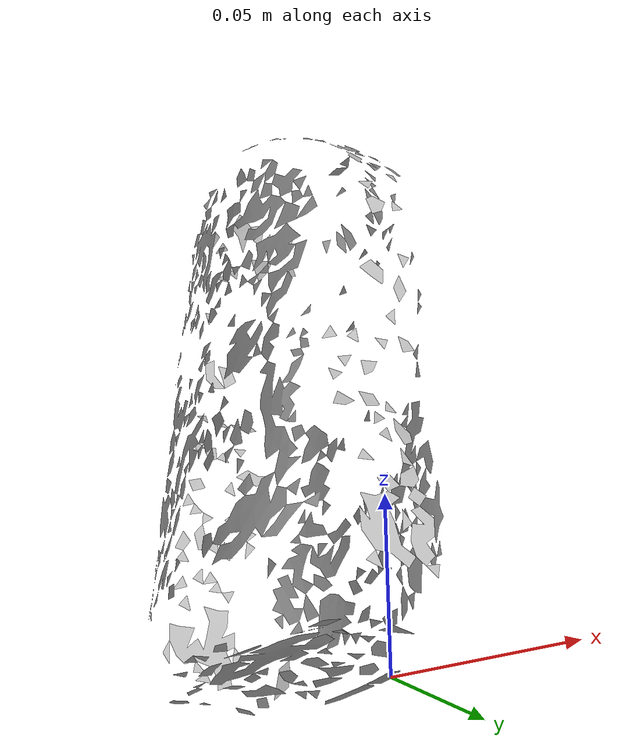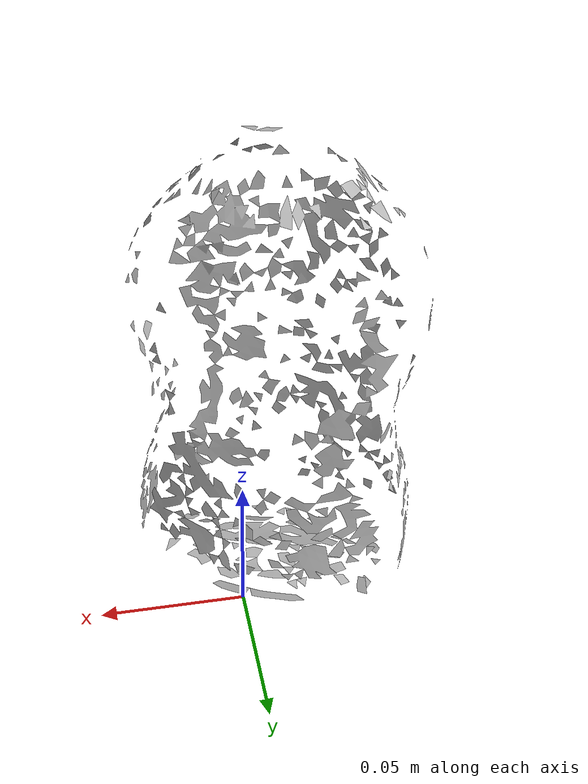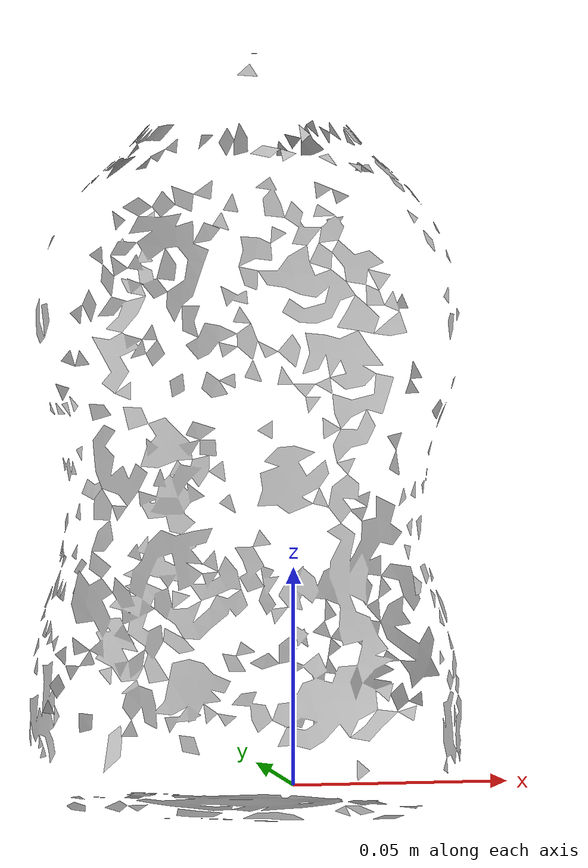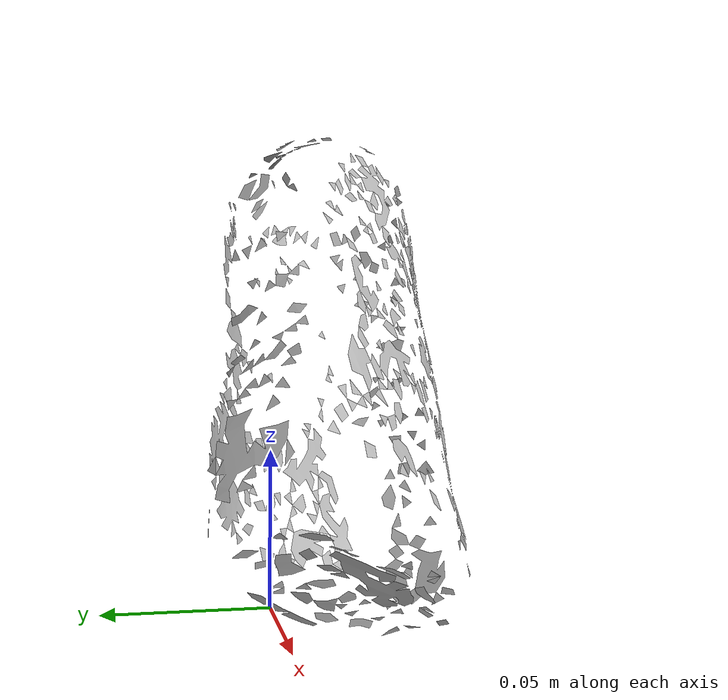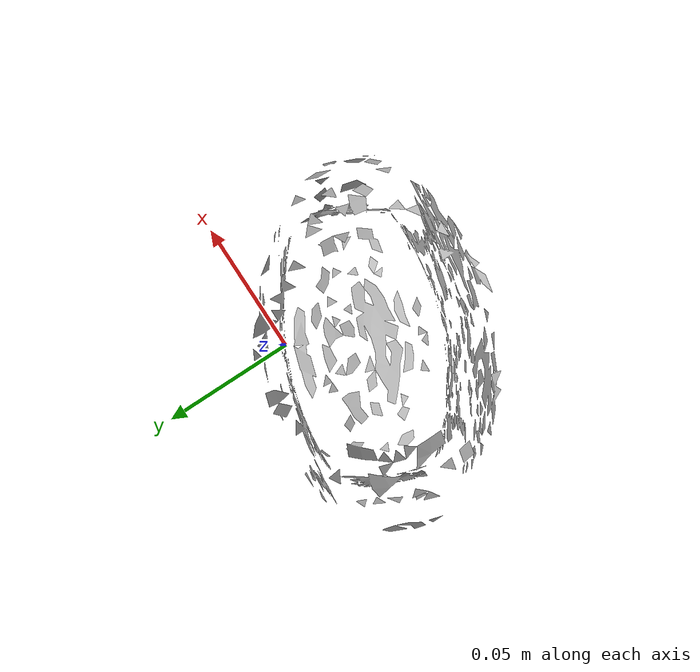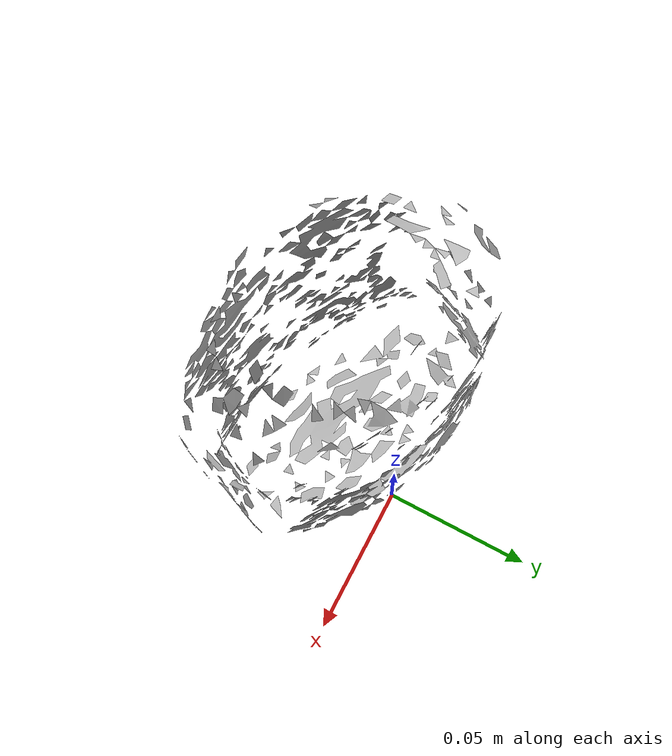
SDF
<?xml version="1.0" ?>
<sdf version="1.4">
  <model name='ycb_006_mustard_bottle'>
    <link name='body'>
      <inertial>
        <mass>0.603</mass>
        <pose>-0.0150543314049 -0.0231093761986 0.0750422712079 0 0 0</pose>
        <inertia>
          <ixx>0.00146556626346</ixx>
          <ixy>7.58485992907e-05</ixy>
          <ixz>-4.97418977917e-06</ixz>
          <iyy>0.00161293604296</iyy>
          <iyz>-7.04889419187e-06</iyz>
          <izz>0.000423009992553</izz>
        </inertia>
      </inertial>
      <visual name='ycb_006_mustard_bottle_visual'>
        <pose>0 0 0 0 0 0</pose>
        <geometry>
          <mesh>
            <uri>model://ycb_006_mustard_bottle/meshes/textured.dae</uri>
          </mesh>
        </geometry>
      </visual>
      <collision name='ycb_006_mustard_bottle_collision'>
        <pose>0 0 0 0 0 0</pose>
        <geometry>
          <mesh>
            <uri>model://ycb_006_mustard_bottle/meshes/nontextured.stl</uri>
          </mesh>
        </geometry>
        <max_contacts>10</max_contacts>
      </collision>
    </link>
  </model>
</sdf>
